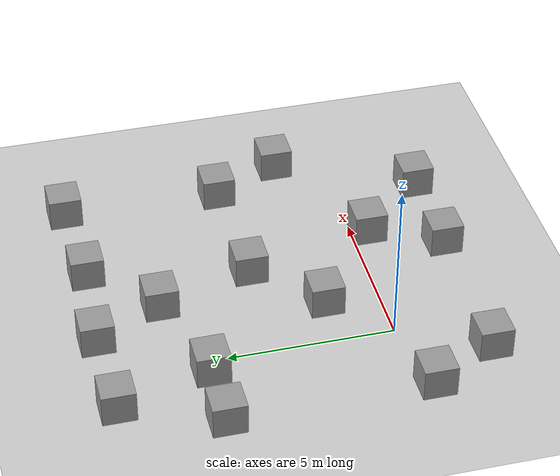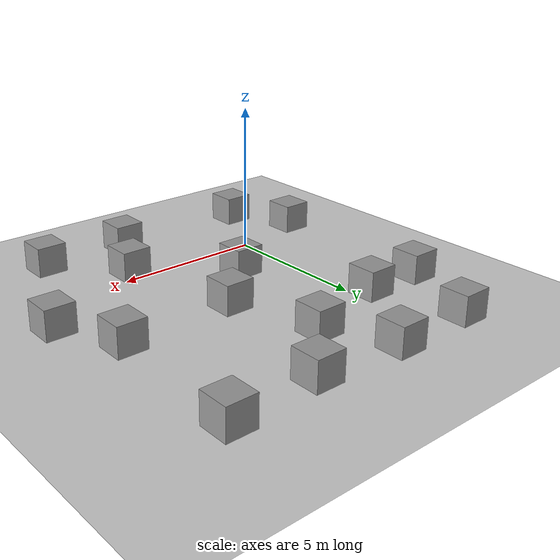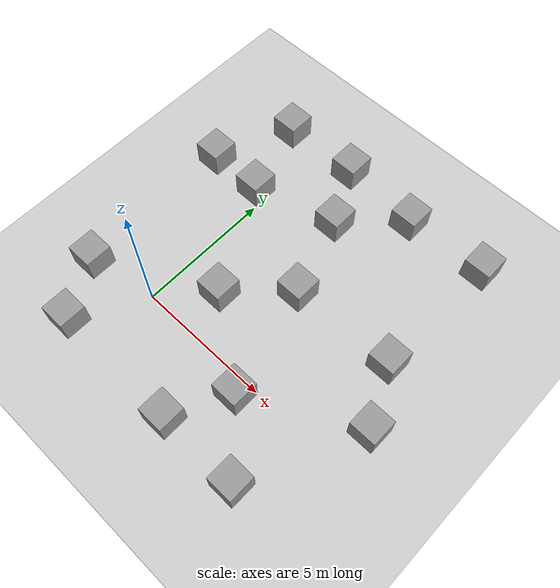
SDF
<sdf version="1.7">
 <world name="default">
  <model name="ground_plane">
   <static>1</static>
   <link name="link">
    <collision name="collision">
     <geometry><plane><normal>0 0 1</normal><size>100 100</size></plane></geometry>
     <surface><friction><ode><mu>100</mu><mu2>50</mu2></ode></friction></surface>
    </collision>
    <visual name="visual">
     <cast_shadows>0</cast_shadows>
     <geometry><plane><normal>0 0 1</normal><size>100 100</size></plane></geometry>
     <material>
      <script><uri>file://media/materials/scripts/gazebo.material</uri><name>Gazebo/Grey</name></script>
     </material>
    </visual>
   </link>
  </model>
  <scene><shadows>0</shadows><ambient>0.4 0.4 0.4 1</ambient><background>0.7 0.7 0.7 1</background></scene>
  <physics type="ode">
   <real_time_update_rate>1000</real_time_update_rate>
   <max_step_size>0.001</max_step_size>
   <real_time_factor>1</real_time_factor>
   <ode>
    <solver>
     <type>quick</type>
     <iters>150</iters>
     <precon_iters>0</precon_iters>
     <sor>1.4</sor>
     <use_dynamic_moi_rescaling>1</use_dynamic_moi_rescaling>
    </solver>
    <constraints>
     <cfm>1e-05</cfm>
     <erp>0.2</erp>
     <contact_max_correcting_vel>2000</contact_max_correcting_vel>
     <contact_surface_layer>0.01</contact_surface_layer>
    </constraints>
   </ode>
  </physics>
  <gravity>0 0 -9.8</gravity>
  <magnetic_field>6e-06 2.3e-05 -4.2e-05</magnetic_field>
  <atmosphere type="adiabatic"/>
  <spherical_coordinates>
   <surface_model>EARTH_WGS84</surface_model>
   <latitude_deg>0</latitude_deg>
   <longitude_deg>0</longitude_deg>
   <elevation>0</elevation>
   <heading_deg>0</heading_deg>
  </spherical_coordinates>
  <light name="user_spot_light_0" type="spot">
   <pose>5.77943 5.7725 1 0 -0 0</pose>
   <diffuse>0.5 0.5 0.5 1</diffuse>
   <specular>0.1 0.1 0.1 1</specular>
   <direction>0 0 -1</direction>
   <attenuation>
    <range>20</range>
    <constant>0.5</constant>
    <linear>0.01</linear>
    <quadratic>0.001</quadratic>
   </attenuation>
   <cast_shadows>0</cast_shadows>
   <spot><inner_angle>0.6</inner_angle><outer_angle>1</outer_angle><falloff>1</falloff></spot>
  </light>
  <model name="unit_box">
   <pose>1.59921 1.68691 0.5 0 -0 0</pose>
   <link name="link">
    <inertial>
     <mass>1</mass>
     <inertia>
      <ixx>0.166667</ixx>
      <ixy>0</ixy>
      <ixz>0</ixz>
      <iyy>0.166667</iyy>
      <iyz>0</iyz>
      <izz>0.166667</izz>
     </inertia>
    </inertial>
    <collision name="collision"><geometry><box><size>1 1 1</size></box></geometry></collision>
    <visual name="visual">
     <geometry><box><size>1 1 1</size></box></geometry>
     <material>
      <script><name>Gazebo/Grey</name><uri>file://media/materials/scripts/gazebo.material</uri></script>
     </material>
    </visual>
   </link>
  </model>
  <model name="unit_box_0">
   <pose>3.5304 3.5305 0.5 0 -0 0</pose>
   <link name="link">
    <inertial>
     <mass>1</mass>
     <inertia>
      <ixx>0.166667</ixx>
      <ixy>0</ixy>
      <ixz>0</ixz>
      <iyy>0.166667</iyy>
      <iyz>0</iyz>
      <izz>0.166667</izz>
     </inertia>
    </inertial>
    <collision name="collision"><geometry><box><size>1 1 1</size></box></geometry></collision>
    <visual name="visual">
     <geometry><box><size>1 1 1</size></box></geometry>
     <material>
      <script><name>Gazebo/Grey</name><uri>file://media/materials/scripts/gazebo.material</uri></script>
     </material>
    </visual>
   </link>
  </model>
  <model name="unit_box_1">
   <pose>4.55512 -0.490282 0.5 0 -0 0</pose>
   <link name="link">
    <inertial>
     <mass>1</mass>
     <inertia>
      <ixx>0.166667</ixx>
      <ixy>0</ixy>
      <ixz>0</ixz>
      <iyy>0.166667</iyy>
      <iyz>0</iyz>
      <izz>0.166667</izz>
     </inertia>
    </inertial>
    <collision name="collision"><geometry><box><size>1 1 1</size></box></geometry></collision>
    <visual name="visual">
     <geometry><box><size>1 1 1</size></box></geometry>
     <material>
      <script><name>Gazebo/Grey</name><uri>file://media/materials/scripts/gazebo.material</uri></script>
     </material>
    </visual>
   </link>
  </model>
  <model name="unit_box_2">
   <pose>-0.494931 5.59548 0.5 0 -0 0</pose>
   <link name="link">
    <inertial>
     <mass>1</mass>
     <inertia>
      <ixx>0.166667</ixx>
      <ixy>0</ixy>
      <ixz>0</ixz>
      <iyy>0.166667</iyy>
      <iyz>0</iyz>
      <izz>0.166667</izz>
     </inertia>
    </inertial>
    <collision name="collision"><geometry><box><size>1 1 1</size></box></geometry></collision>
    <visual name="visual">
     <geometry><box><size>1 1 1</size></box></geometry>
     <material>
      <script><name>Gazebo/Grey</name><uri>file://media/materials/scripts/gazebo.material</uri></script>
     </material>
    </visual>
   </link>
  </model>
  <model name="unit_box_3">
   <pose>2.5949 6.45348 0.5 0 -0 0</pose>
   <link name="link">
    <inertial>
     <mass>1</mass>
     <inertia>
      <ixx>0.166667</ixx>
      <ixy>0</ixy>
      <ixz>0</ixz>
      <iyy>0.166667</iyy>
      <iyz>0</iyz>
      <izz>0.166667</izz>
     </inertia>
    </inertial>
    <collision name="collision"><geometry><box><size>1 1 1</size></box></geometry></collision>
    <visual name="visual">
     <geometry><box><size>1 1 1</size></box></geometry>
     <material>
      <script><name>Gazebo/Grey</name><uri>file://media/materials/scripts/gazebo.material</uri></script>
     </material>
    </visual>
   </link>
  </model>
  <model name="unit_box_5">
   <pose>8.44905 1.55922 0.5 0 -0 0</pose>
   <link name="link">
    <inertial>
     <mass>1</mass>
     <inertia>
      <ixx>0.166667</ixx>
      <ixy>0</ixy>
      <ixz>0</ixz>
      <iyy>0.166667</iyy>
      <iyz>0</iyz>
      <izz>0.166667</izz>
     </inertia>
    </inertial>
    <collision name="collision"><geometry><box><size>1 1 1</size></box></geometry></collision>
    <visual name="visual">
     <geometry><box><size>1 1 1</size></box></geometry>
     <material>
      <script><name>Gazebo/Grey</name><uri>file://media/materials/scripts/gazebo.material</uri></script>
     </material>
    </visual>
   </link>
  </model>
  <model name="unit_box_6">
   <pose>7.56757 8.5053 0.5 0 -0 0</pose>
   <link name="link">
    <inertial>
     <mass>1</mass>
     <inertia>
      <ixx>0.166667</ixx>
      <ixy>0</ixy>
      <ixz>0</ixz>
      <iyy>0.166667</iyy>
      <iyz>0</iyz>
      <izz>0.166667</izz>
     </inertia>
    </inertial>
    <collision name="collision"><geometry><box><size>1 1 1</size></box></geometry></collision>
    <visual name="visual">
     <geometry><box><size>1 1 1</size></box></geometry>
     <material>
      <script><name>Gazebo/Grey</name><uri>file://media/materials/scripts/gazebo.material</uri></script>
     </material>
    </visual>
   </link>
  </model>
  <model name="unit_box_7">
   <pose>7.41588 3.66294 0.5 0 -0 0</pose>
   <link name="link">
    <inertial>
     <mass>1</mass>
     <inertia>
      <ixx>0.166667</ixx>
      <ixy>0</ixy>
      <ixz>0</ixz>
      <iyy>0.166667</iyy>
      <iyz>0</iyz>
      <izz>0.166667</izz>
     </inertia>
    </inertial>
    <collision name="collision"><geometry><box><size>1 1 1</size></box></geometry></collision>
    <visual name="visual">
     <geometry><box><size>1 1 1</size></box></geometry>
     <material>
      <script><name>Gazebo/Grey</name><uri>file://media/materials/scripts/gazebo.material</uri></script>
     </material>
    </visual>
   </link>
  </model>
  <model name="unit_box_8">
   <pose>4.50561 8.33719 0.5 0 -0 0</pose>
   <link name="link">
    <inertial>
     <mass>1</mass>
     <inertia>
      <ixx>0.166667</ixx>
      <ixy>0</ixy>
      <ixz>0</ixz>
      <iyy>0.166667</iyy>
      <iyz>0</iyz>
      <izz>0.166667</izz>
     </inertia>
    </inertial>
    <collision name="collision"><geometry><box><size>1 1 1</size></box></geometry></collision>
    <visual name="visual">
     <geometry><box><size>1 1 1</size></box></geometry>
     <material>
      <script><name>Gazebo/Grey</name><uri>file://media/materials/scripts/gazebo.material</uri></script>
     </material>
    </visual>
   </link>
  </model>
  <model name="unit_box_9">
   <pose>1.5259 8.54917 0.5 0 -0 0</pose>
   <link name="link">
    <inertial>
     <mass>1</mass>
     <inertia>
      <ixx>0.166667</ixx>
      <ixy>0</ixy>
      <ixz>0</ixz>
      <iyy>0.166667</iyy>
      <iyz>0</iyz>
      <izz>0.166667</izz>
     </inertia>
    </inertial>
    <collision name="collision"><geometry><box><size>1 1 1</size></box></geometry></collision>
    <visual name="visual">
     <geometry><box><size>1 1 1</size></box></geometry>
     <material>
      <script><name>Gazebo/Grey</name><uri>file://media/materials/scripts/gazebo.material</uri></script>
     </material>
    </visual>
   </link>
  </model>
  <model name="unit_box_10">
   <pose>-1.34552 8.46051 0.5 0 -0 0</pose>
   <link name="link">
    <inertial>
     <mass>1</mass>
     <inertia>
      <ixx>0.166667</ixx>
      <ixy>0</ixy>
      <ixz>0</ixz>
      <iyy>0.166667</iyy>
      <iyz>0</iyz>
      <izz>0.166667</izz>
     </inertia>
    </inertial>
    <collision name="collision"><geometry><box><size>1 1 1</size></box></geometry></collision>
    <visual name="visual">
     <geometry><box><size>1 1 1</size></box></geometry>
     <material>
      <script><name>Gazebo/Grey</name><uri>file://media/materials/scripts/gazebo.material</uri></script>
     </material>
    </visual>
   </link>
  </model>
  <model name="unit_box_11">
   <pose>-2.54028 5.5968 0.5 0 -0 0</pose>
   <link name="link">
    <inertial>
     <mass>1</mass>
     <inertia>
      <ixx>0.166667</ixx>
      <ixy>0</ixy>
      <ixz>0</ixz>
      <iyy>0.166667</iyy>
      <iyz>0</iyz>
      <izz>0.166667</izz>
     </inertia>
    </inertial>
    <collision name="collision"><geometry><box><size>1 1 1</size></box></geometry></collision>
    <visual name="visual">
     <geometry><box><size>1 1 1</size></box></geometry>
     <material>
      <script><name>Gazebo/Grey</name><uri>file://media/materials/scripts/gazebo.material</uri></script>
     </material>
    </visual>
   </link>
  </model>
  <model name="unit_box_12">
   <pose>-2.49219 -0.455028 0.5 0 -0 0</pose>
   <link name="link">
    <inertial>
     <mass>1</mass>
     <inertia>
      <ixx>0.166667</ixx>
      <ixy>0</ixy>
      <ixz>0</ixz>
      <iyy>0.166667</iyy>
      <iyz>0</iyz>
      <izz>0.166667</izz>
     </inertia>
    </inertial>
    <collision name="collision"><geometry><box><size>1 1 1</size></box></geometry></collision>
    <visual name="visual">
     <geometry><box><size>1 1 1</size></box></geometry>
     <material>
      <script><name>Gazebo/Grey</name><uri>file://media/materials/scripts/gazebo.material</uri></script>
     </material>
    </visual>
   </link>
  </model>
  <model name="unit_box_14">
   <pose>-1.35906 -2.49707 0.5 0 -0 0</pose>
   <link name="link">
    <inertial>
     <mass>1</mass>
     <inertia>
      <ixx>0.166667</ixx>
      <ixy>0</ixy>
      <ixz>0</ixz>
      <iyy>0.166667</iyy>
      <iyz>0</iyz>
      <izz>0.166667</izz>
     </inertia>
    </inertial>
    <collision name="collision"><geometry><box><size>1 1 1</size></box></geometry></collision>
    <visual name="visual">
     <geometry><box><size>1 1 1</size></box></geometry>
     <material>
      <script><name>Gazebo/Grey</name><uri>file://media/materials/scripts/gazebo.material</uri></script>
     </material>
    </visual>
   </link>
  </model>
  <model name="unit_box_15">
   <pose>3.49568 -2.58123 0.5 0 -0 0</pose>
   <link name="link">
    <inertial>
     <mass>1</mass>
     <inertia>
      <ixx>0.166667</ixx>
      <ixy>0</ixy>
      <ixz>0</ixz>
      <iyy>0.166667</iyy>
      <iyz>0</iyz>
      <izz>0.166667</izz>
     </inertia>
    </inertial>
    <collision name="collision"><geometry><box><size>1 1 1</size></box></geometry></collision>
    <visual name="visual">
     <geometry><box><size>1 1 1</size></box></geometry>
     <material>
      <script><name>Gazebo/Grey</name><uri>file://media/materials/scripts/gazebo.material</uri></script>
     </material>
    </visual>
   </link>
  </model>
  <model name="unit_box_16">
   <pose>6.51019 -2.57692 0.5 0 -0 0</pose>
   <link name="link">
    <inertial>
     <mass>1</mass>
     <inertia>
      <ixx>0.166667</ixx>
      <ixy>0</ixy>
      <ixz>0</ixz>
      <iyy>0.166667</iyy>
      <iyz>0</iyz>
      <izz>0.166667</izz>
     </inertia>
    </inertial>
    <collision name="collision"><geometry><box><size>1 1 1</size></box></geometry></collision>
    <visual name="visual">
     <geometry><box><size>1 1 1</size></box></geometry>
     <material>
      <script><name>Gazebo/Grey</name><uri>file://media/materials/scripts/gazebo.material</uri></script>
     </material>
    </visual>
   </link>
  </model>
 </world>
</sdf>
